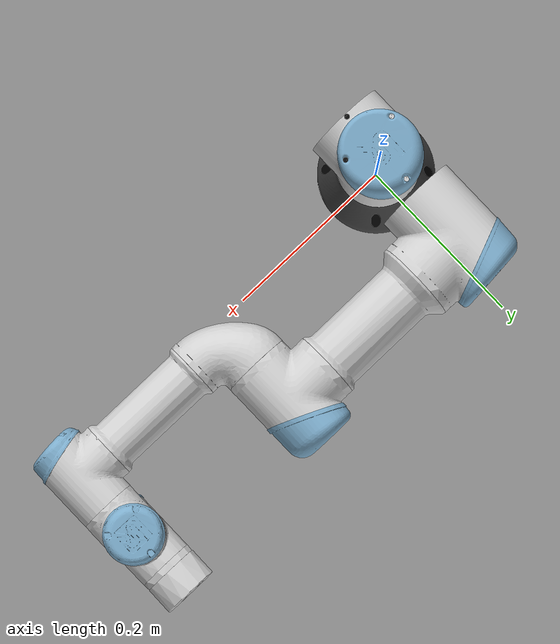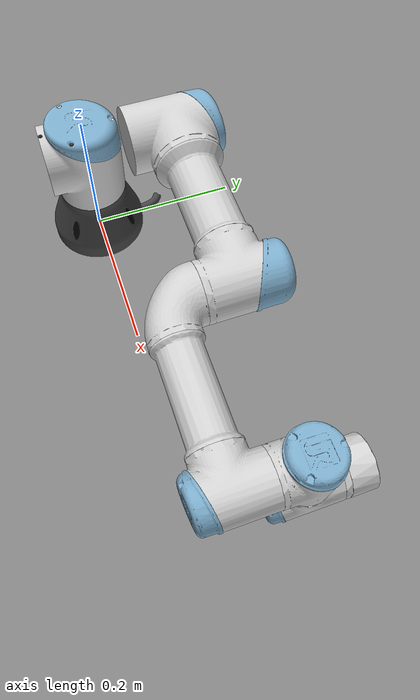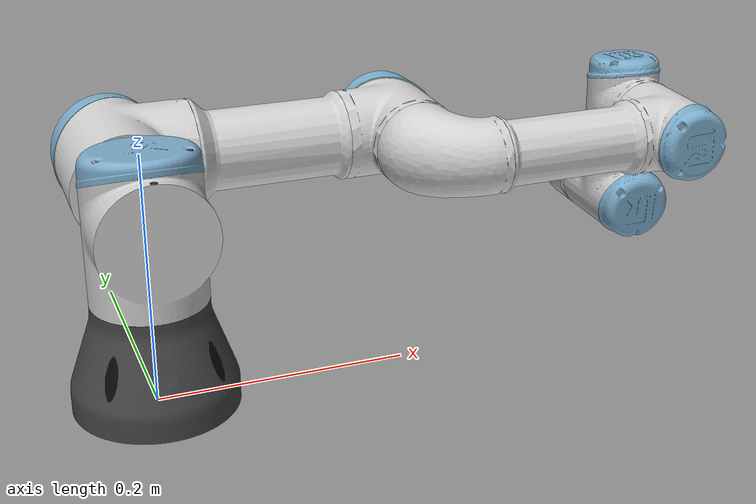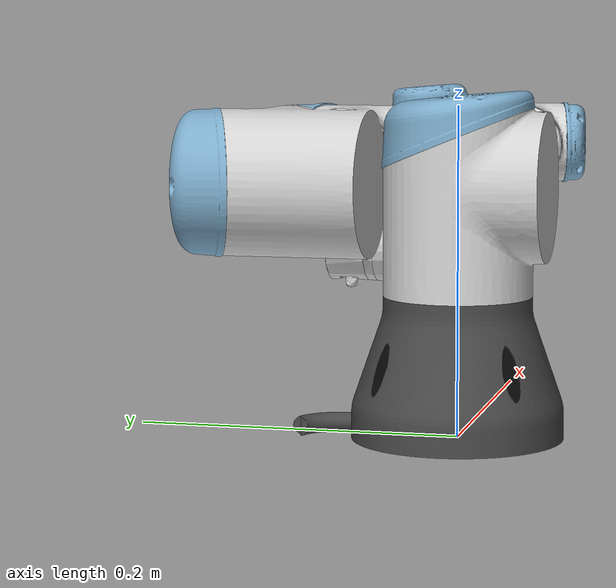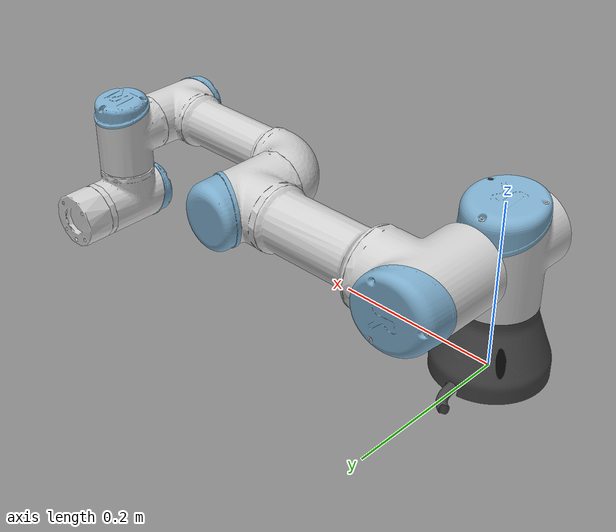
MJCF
<mujoco model="ur3">
  <compiler angle="radian" meshdir="assets" autolimits="true"/>
  <default>
    <default class="ur3">
      <joint axis="0 0 1" range="-6.28319 6.28319" armature="0.05" damping="1"/>
      <default class="visual"><geom type="mesh" contype="0" conaffinity="0" group="2"/></default>
      <default class="collision"><geom type="mesh" contype="0" conaffinity="0" group="3" rgba="1 0 0 0.3"/></default>
      <site size="0.001" rgba="0.5 0.5 0.5 0.3" group="4"/>
    </default>
  </default>
  <asset>
    <mesh file="base_0.obj"/>
    <mesh file="base_1.obj"/>
    <mesh name="base_hull" file="base_hull.obj"/>
    <mesh file="shoulder_0.obj"/>
    <mesh file="shoulder_1.obj"/>
    <mesh file="shoulder_2.obj"/>
    <mesh name="shoulder_hull" file="shoulder_hull.obj"/>
    <mesh file="upperarm_0.obj"/>
    <mesh file="upperarm_1.obj"/>
    <mesh file="upperarm_2.obj"/>
    <mesh name="upperarm_hull" file="upperarm_hull.obj"/>
    <mesh file="forearm_0.obj"/>
    <mesh file="forearm_1.obj"/>
    <mesh file="forearm_2.obj"/>
    <mesh name="forearm_hull" file="forearm_hull.obj"/>
    <mesh file="wrist1_0.obj"/>
    <mesh file="wrist1_1.obj"/>
    <mesh name="wrist1_hull" file="wrist1_hull.obj"/>
    <mesh file="wrist2_0.obj"/>
    <mesh file="wrist2_1.obj"/>
    <mesh name="wrist2_hull" file="wrist2_hull.obj"/>
    <mesh file="wrist3_0.obj"/>
    <mesh file="wrist3_1.obj"/>
    <mesh name="wrist3_hull" file="wrist3_hull.obj"/>
  </asset>
  <worldbody>
    <body name="base" childclass="ur3">
      <body name="base_link_inertia" quat="0 0 0 1">
        <inertial pos="0 0.0177459 0.0426695" mass="2.0" diaginertia="0.00570961 0.00398637 0.00718661"/>
        <geom class="visual" mesh="base_0" pos="0 0 0" quat="1 0 0 0.000244929" rgba="0.033 0.033 0.033 1"/>
        <geom class="visual" mesh="base_1" pos="0 0 0" quat="1 0 0 0.000244929" rgba="0.278 0.278 0.278 1"/>
        <geom class="collision" mesh="base_hull"/>
        <body name="shoulder_link" pos="0 0 0.1519" quat="1 0 0 0">
          <joint name="shoulder_pan_joint"/>
          <inertial pos="0.000129016 -0.00405299 -0.00438428" mass="2.0" diaginertia="0.00418213 0.00389778 0.00304237"/>
          <geom class="visual" mesh="shoulder_0" pos="0 0 0" quat="1 0 0 0.000244929" rgba="0.033 0.033 0.033 1"/>
          <geom class="visual" mesh="shoulder_1" pos="0 0 0" quat="1 0 0 0.000244929" rgba="0.82 0.82 0.82 1"/>
          <geom class="visual" mesh="shoulder_2" pos="0 0 0" quat="1 0 0 0.000244929" rgba="0.49 0.678 0.8 1"/>
          <geom class="collision" mesh="shoulder_hull"/>
          <body name="upper_arm_link" pos="0 0 0" quat="0.707107 0.707107 0 0">
            <joint name="shoulder_lift_joint"/>
            <inertial pos="-0.118256 -1.34092e-05 0.115525" mass="3.42" diaginertia="0.00668742 0.0350277 0.0330845"/>
            <geom class="visual" mesh="upperarm_0" pos="0 0 0.1198" quat="0.5 0.5 -0.5 -0.5" rgba="0.82 0.82 0.82 1"/>
            <geom class="visual" mesh="upperarm_1" pos="0 0 0.1198" quat="0.5 0.5 -0.5 -0.5" rgba="0.49 0.678 0.8 1"/>
            <geom class="visual" mesh="upperarm_2" pos="0 0 0.1198" quat="0.5 0.5 -0.5 -0.5" rgba="0.82 0.82 0.82 1"/>
            <geom class="collision" mesh="upperarm_hull"/>
            <body name="forearm_link" pos="-0.24365 0 0" quat="1 0 0 0">
              <joint name="elbow_joint" range="-3.14159 3.14159"/>
              <inertial pos="-0.103944 2.73846e-05 0.0296067" mass="1.26" diaginertia="0.00158123 0.00938521 0.00898611"/>
              <geom class="visual" mesh="forearm_0" pos="0 0 0.0275" quat="0.5 0.5 -0.5 -0.5" rgba="0.82 0.82 0.82 1"/>
              <geom class="visual" mesh="forearm_1" pos="0 0 0.0275" quat="0.5 0.5 -0.5 -0.5" rgba="0.49 0.678 0.8 1"/>
              <geom class="visual" mesh="forearm_2" pos="0 0 0.0275" quat="0.5 0.5 -0.5 -0.5" rgba="0.82 0.82 0.82 1"/>
              <geom class="collision" mesh="forearm_hull"/>
              <body name="wrist_1_link" pos="-0.21325 0 0.11235" quat="1 0 0 0">
                <joint name="wrist_1_joint"/>
                <inertial pos="2.78652e-05 0.00202254 -0.00801027" mass="0.8" diaginertia="0.000918152 0.000670124 0.000802238"/>
                <geom class="visual" mesh="wrist1_0" pos="0 0 -0.085" quat="0.707107 0.707107 0 0" rgba="0.82 0.82 0.82 1"/>
                <geom class="visual" mesh="wrist1_1" pos="0 0 -0.085" quat="0.707107 0.707107 0 0" rgba="0.49 0.678 0.8 1"/>
                <geom class="collision" mesh="wrist1_hull"/>
                <body name="wrist_2_link" pos="0 -0.08535 -1.75056e-11" quat="0.707107 0.707107 0 0">
                  <joint name="wrist_2_joint"/>
                  <inertial pos="-1.11163e-05 -0.00372029 -0.00594665" mass="0.8" diaginertia="0.000918428 0.000669565 0.000801173"/>
                  <geom class="visual" mesh="wrist2_0" pos="0 0 -0.083" quat="1 0 0 0" rgba="0.82 0.82 0.82 1"/>
                  <geom class="visual" mesh="wrist2_1" pos="0 0 -0.083" quat="1 0 0 0" rgba="0.49 0.678 0.8 1"/>
                  <geom class="collision" mesh="wrist2_hull"/>
                  <body name="wrist_3_link" pos="0 0.0819 -1.6798e-11" quat="0.707107 -0.707107 8.65956e-17 8.88054e-27">
                    <joint name="wrist_3_joint"/>
                    <inertial pos="-6.15101e-05 -0.00299608 -0.0214341" mass="0.35" diaginertia="0.000187702 0.000163762 0.000258908"/>
                    <geom class="visual" mesh="wrist3_0" pos="0 -0.002 -0.082" quat="0.707107 0.707107 0 0" rgba="0.82 0.82 0.82 1"/>
                    <geom class="visual" mesh="wrist3_1" pos="0 -0.002 -0.082" quat="0.707107 0.707107 0 0" rgba="0.82 0.82 0.82 1"/>
                    <geom class="collision" mesh="wrist3_hull"/>
                    <site name="attachment_site" quat="1 0 -3.06162e-17 3.06162e-17"/>
                  </body>
                </body>
              </body>
            </body>
          </body>
        </body>
      </body>
    </body>
  </worldbody>
  <actuator>
    <motor name="shoulder_pan" joint="shoulder_pan_joint" ctrlrange="-56 56"/>
    <motor name="shoulder_lift" joint="shoulder_lift_joint" ctrlrange="-56 56"/>
    <motor name="elbow" joint="elbow_joint" ctrlrange="-28 28"/>
    <motor name="wrist_1" joint="wrist_1_joint" ctrlrange="-12 12"/>
    <motor name="wrist_2" joint="wrist_2_joint" ctrlrange="-12 12"/>
    <motor name="wrist_3" joint="wrist_3_joint" ctrlrange="-12 12"/>
  </actuator>
</mujoco>
